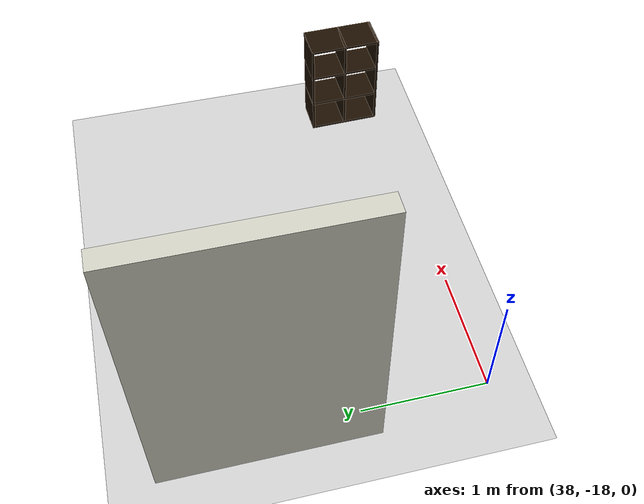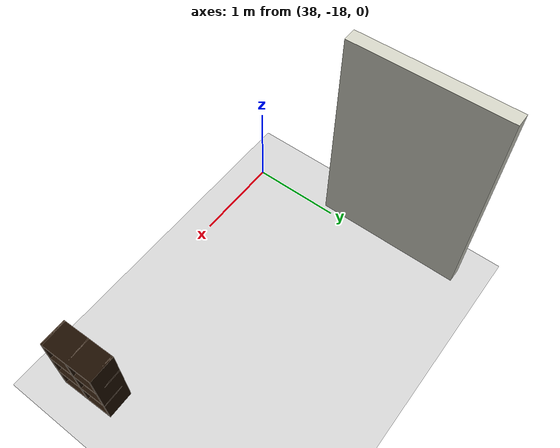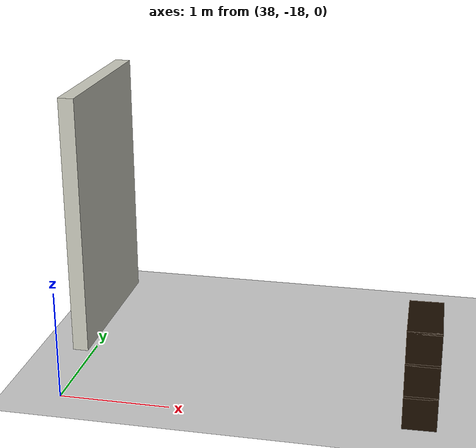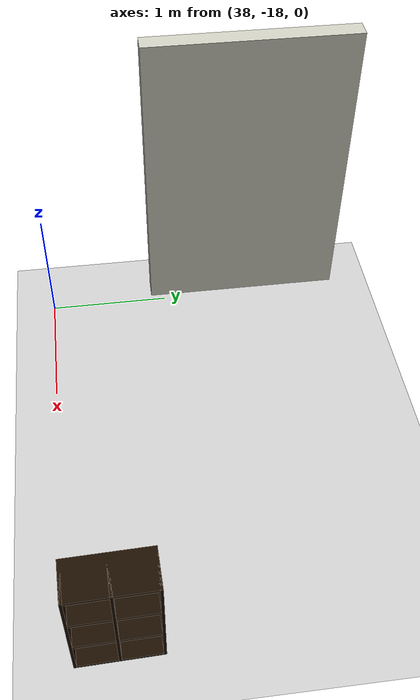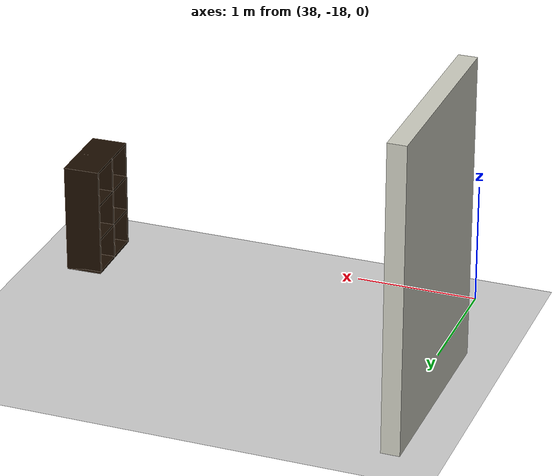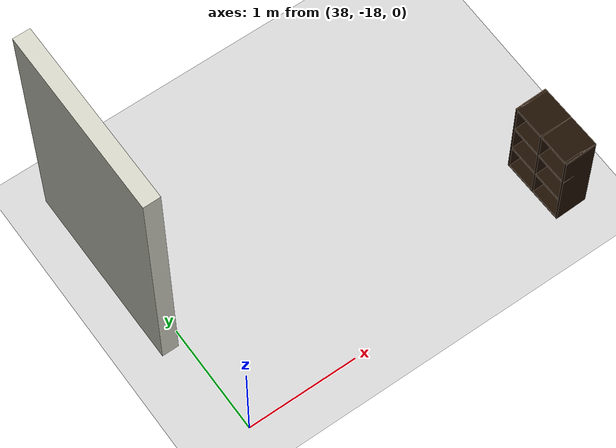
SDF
<sdf version="1.7">
 <world name="default">
  <model name="ground_plane">
   <static>1</static>
   <link name="link">
    <collision name="collision">
     <geometry><plane><normal>0 0 1</normal><size>100 100</size></plane></geometry>
     <surface><friction><ode><mu>100</mu><mu2>50</mu2></ode></friction></surface>
    </collision>
    <visual name="visual">
     <cast_shadows>0</cast_shadows>
     <geometry><plane><normal>0 0 1</normal><size>100 100</size></plane></geometry>
     <material>
      <ambient>1 1 1 1</ambient>
      <diffuse>0.8 0.8 0.8 1</diffuse>
      <specular>0.01 0.01 0.01 1</specular>
     </material>
    </visual>
   </link>
  </model>
  <model name="floorPlan">
   <pose>6.7155 -5.3556 0 0 -0 0</pose>
   <link name="Wall_112">
    <collision name="Wall_112_Collision">
     <geometry><box><size>1.67 0.15 2.5</size></box></geometry>
     <pose>0 0 1.25 0 -0 0</pose>
    </collision>
    <visual name="Wall_112_Visual">
     <pose>0 0 1.25 0 -0 0</pose>
     <geometry><box><size>1.67 0.15 2.5</size></box></geometry>
     <material>
      <script><uri>file://media/materials/scripts/gazebo.material</uri><name>Gazebo/PaintedWall</name></script>
      <ambient>1 1 1 1</ambient>
     </material>
     <meta><layer>0</layer></meta>
    </visual>
    <pose>31.154 -10.9225 0 0 0 -1.5708</pose>
   </link>
   <static>1</static>
  </model>
  <model name="6_Cube_StorageE_clone_8">
   <link name="Wall_0">
    <pose>0 0 0.01 0 -0 0</pose>
    <inertial>
     <mass>1.6201</mass>
     <inertia><ixx>0.0119</ixx><iyy>0.0631</iyy><izz>0.0513</izz><ixy>0</ixy><ixz>0</ixz><iyz>0</iyz></inertia>
    </inertial>
    <collision name="Wall_0_Collision"><geometry><box><size>0.616 0.296 0.02</size></box></geometry></collision>
    <visual name="Wall_0_Visual">
     <geometry><box><size>0.616 0.296 0.02</size></box></geometry>
     <material>
      <script><uri>file://media/materials/scripts/gazebo.material</uri><name>Gazebo/Grey</name></script>
      <ambient>0.105882 0.0509804 0 1</ambient>
     </material>
    </visual>
   </link>
   <joint name="0_2" type="fixed">
    <pose>-0.308 0 0 0 -0 0</pose>
    <parent>Wall_2</parent>
    <child>Wall_0</child>
    <axis><xyz>1 0 0</xyz><limit><lower>-1e+16</lower><upper>1e+16</upper></limit></axis>
   </joint>
   <joint name="0_12" type="fixed">
    <parent>Wall_12</parent>
    <child>Wall_0</child>
    <axis><xyz>0 0 1</xyz><limit><lower>-1e+16</lower><upper>1e+16</upper></limit></axis>
   </joint>
   <joint name="0_4" type="fixed">
    <pose>0.308 0 0 0 -0 0</pose>
    <parent>Wall_4</parent>
    <child>Wall_0</child>
    <axis><xyz>1 0 0</xyz><limit><lower>-1e+16</lower><upper>1e+16</upper></limit></axis>
   </joint>
   <link name="Wall_10">
    <pose>0 0 0.61 0 -0 0</pose>
    <inertial>
     <mass>1.6201</mass>
     <inertia><ixx>0.0119</ixx><iyy>0.0631</iyy><izz>0.0513</izz><ixy>0</ixy><ixz>0</ixz><iyz>0</iyz></inertia>
    </inertial>
    <collision name="Wall_10_Collision"><geometry><box><size>0.616 0.296 0.02</size></box></geometry></collision>
    <visual name="Wall_10_Visual">
     <geometry><box><size>0.616 0.296 0.02</size></box></geometry>
     <material>
      <script><uri>file://media/materials/scripts/gazebo.material</uri><name>Gazebo/Grey</name></script>
      <ambient>0.105882 0.0509804 0 1</ambient>
     </material>
    </visual>
   </link>
   <joint name="10_2" type="fixed">
    <pose>-0.308 0 0 0 -0 0</pose>
    <parent>Wall_2</parent>
    <child>Wall_10</child>
    <axis><xyz>1 0 0</xyz><limit><lower>-1e+16</lower><upper>1e+16</upper></limit></axis>
   </joint>
   <joint name="10_12" type="fixed">
    <parent>Wall_12</parent>
    <child>Wall_10</child>
    <axis><xyz>0 0 1</xyz><limit><lower>-1e+16</lower><upper>1e+16</upper></limit></axis>
   </joint>
   <joint name="10_4" type="fixed">
    <pose>0.308 0 0 0 -0 0</pose>
    <parent>Wall_4</parent>
    <child>Wall_10</child>
    <axis><xyz>1 0 0</xyz><limit><lower>-1e+16</lower><upper>1e+16</upper></limit></axis>
   </joint>
   <link name="Wall_12">
    <pose>0 0 0.4575 0 -0 0</pose>
    <inertial>
     <mass>2.4065</mass>
     <inertia><ixx>0.0177</ixx><iyy>0.1855</iyy><izz>0.168</izz><ixy>0</ixy><ixz>0</ixz><iyz>0</iyz></inertia>
    </inertial>
    <collision name="Wall_12_Collision"><geometry><box><size>0.02 0.296 0.915</size></box></geometry></collision>
    <visual name="Wall_12_Visual">
     <geometry><box><size>0.02 0.296 0.915</size></box></geometry>
     <material>
      <script><uri>file://media/materials/scripts/gazebo.material</uri><name>Gazebo/Grey</name></script>
      <ambient>0.105882 0.0509804 0 1</ambient>
     </material>
    </visual>
   </link>
   <link name="Wall_2">
    <pose>-0.298 0 0.4575 0 -0 0</pose>
    <inertial>
     <mass>2.4065</mass>
     <inertia><ixx>0.0177</ixx><iyy>0.1855</iyy><izz>0.168</izz><ixy>0</ixy><ixz>0</ixz><iyz>0</iyz></inertia>
    </inertial>
    <collision name="Wall_2_Collision"><geometry><box><size>0.02 0.296 0.915</size></box></geometry></collision>
    <visual name="Wall_2_Visual">
     <geometry><box><size>0.02 0.296 0.915</size></box></geometry>
     <material>
      <script><uri>file://media/materials/scripts/gazebo.material</uri><name>Gazebo/Grey</name></script>
      <ambient>0.105882 0.0509804 0 1</ambient>
     </material>
    </visual>
   </link>
   <link name="Wall_4">
    <pose>0.298 0 0.4575 0 -0 0</pose>
    <inertial>
     <mass>2.4065</mass>
     <inertia><ixx>0.0177</ixx><iyy>0.1855</iyy><izz>0.168</izz><ixy>0</ixy><ixz>0</ixz><iyz>0</iyz></inertia>
    </inertial>
    <collision name="Wall_4_Collision"><geometry><box><size>0.02 0.296 0.915</size></box></geometry></collision>
    <visual name="Wall_4_Visual">
     <geometry><box><size>0.02 0.296 0.915</size></box></geometry>
     <material>
      <script><uri>file://media/materials/scripts/gazebo.material</uri><name>Gazebo/Grey</name></script>
      <ambient>0.105882 0.0509804 0 1</ambient>
     </material>
    </visual>
   </link>
   <link name="Wall_6">
    <pose>0 0 0.905 0 -0 0</pose>
    <inertial>
     <mass>1.6201</mass>
     <inertia><ixx>0.0119</ixx><iyy>0.0631</iyy><izz>0.0513</izz><ixy>0</ixy><ixz>0</ixz><iyz>0</iyz></inertia>
    </inertial>
    <collision name="Wall_6_Collision"><geometry><box><size>0.616 0.296 0.02</size></box></geometry></collision>
    <visual name="Wall_6_Visual">
     <geometry><box><size>0.616 0.296 0.02</size></box></geometry>
     <material>
      <script><uri>file://media/materials/scripts/gazebo.material</uri><name>Gazebo/Grey</name></script>
      <ambient>0.105882 0.0509804 0 1</ambient>
     </material>
    </visual>
   </link>
   <joint name="6_2" type="fixed">
    <pose>-0.308 0 0 0 -0 0</pose>
    <parent>Wall_2</parent>
    <child>Wall_6</child>
    <axis><xyz>2 0 0</xyz><limit><lower>-1e+16</lower><upper>1e+16</upper></limit></axis>
   </joint>
   <joint name="6_12" type="fixed">
    <parent>Wall_12</parent>
    <child>Wall_6</child>
    <axis><xyz>0 0 1</xyz><limit><lower>-1e+16</lower><upper>1e+16</upper></limit></axis>
   </joint>
   <joint name="6_4" type="fixed">
    <pose>0.308 0 0 0 -0 0</pose>
    <parent>Wall_4</parent>
    <child>Wall_6</child>
    <axis><xyz>1 0 0</xyz><limit><lower>-1e+16</lower><upper>1e+16</upper></limit></axis>
   </joint>
   <link name="Wall_8">
    <pose>0 0 0.305 0 -0 0</pose>
    <inertial>
     <mass>1.6201</mass>
     <inertia><ixx>0.0119</ixx><iyy>0.0631</iyy><izz>0.0513</izz><ixy>0</ixy><ixz>0</ixz><iyz>0</iyz></inertia>
    </inertial>
    <collision name="Wall_8_Collision"><geometry><box><size>0.616 0.296 0.02</size></box></geometry></collision>
    <visual name="Wall_8_Visual">
     <geometry><box><size>0.616 0.296 0.02</size></box></geometry>
     <material>
      <script><uri>file://media/materials/scripts/gazebo.material</uri><name>Gazebo/Grey</name></script>
      <ambient>0.105882 0.0509804 0 1</ambient>
     </material>
    </visual>
   </link>
   <joint name="8_2" type="fixed">
    <pose>-0.308 0 0 0 -0 0</pose>
    <parent>Wall_2</parent>
    <child>Wall_8</child>
    <axis><xyz>1 0 0</xyz><limit><lower>-1e+16</lower><upper>1e+16</upper></limit></axis>
   </joint>
   <joint name="8_12" type="fixed">
    <parent>Wall_12</parent>
    <child>Wall_8</child>
    <axis><xyz>0 0 1</xyz><limit><lower>-1e+16</lower><upper>1e+16</upper></limit></axis>
   </joint>
   <joint name="8_4" type="fixed">
    <pose>0.308 0 0 0 -0 0</pose>
    <parent>Wall_4</parent>
    <child>Wall_8</child>
    <axis><xyz>1 0 0</xyz><limit><lower>-1e+16</lower><upper>1e+16</upper></limit></axis>
   </joint>
   <static>1</static>
   <pose>41.1607 -17.6375 0 0 0 -1.54533</pose>
  </model>
 </world>
</sdf>
